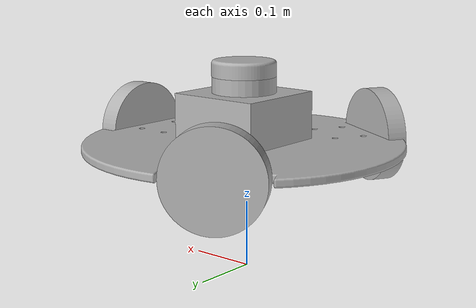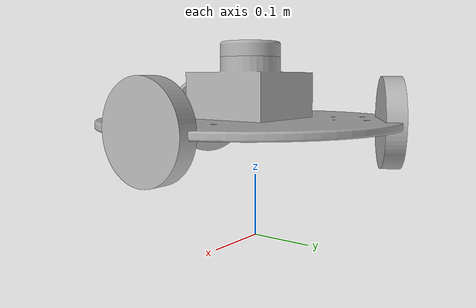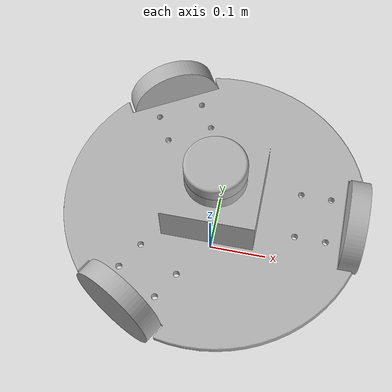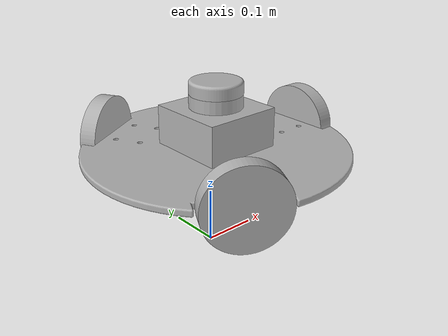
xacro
<?xml version="1.0" ?>
<robot name="adhic4" xmlns:xacro="http://www.ros.org/wiki/xacro">

<xacro:include filename="$(find adhic4_description)/urdf/materials.xacro" />
<xacro:include filename="$(find adhic4_description)/urdf/adhic4.trans" />
<xacro:include filename="$(find adhic4_description)/urdf/adhic4.gazebo" />
<link name="base_footprint"></link>
<link name="hbot_base">
  <inertial>
    <origin xyz="0.018156704502869988 -0.0074033581631362325 0.18794645946750038" rpy="0 0 0"/>
    <mass value="208.37705429986153"/>
    <inertia ixx="7.371857" iyy="7.368891" izz="13.35531" ixy="-0.00061" iyz="-4.5e-05" ixz="-0.000131"/>
  </inertial>
  <visual>
    <origin xyz="0 0 0.22" rpy="0 0 0"/>
    <geometry>
      <mesh filename="package://adhic4_description/meshes/base_link.stl" scale="0.0005 0.0005 0.0005"/>
    </geometry>
    <material name="silver"/>
  </visual>
  <collision>
    <origin xyz="0 0 0.22" rpy="0 0 0"/>
    <geometry>
      <mesh filename="package://adhic4_description/meshes/base_link.stl" scale="0.0005 0.0005 0.0005"/>
    </geometry>
  </collision>
</link>
<joint name="j1" type="fixed">
  <parent link="base_footprint"/>
  <child link="hbot_base"/>
</joint>
<link name="front_wheel_1">
  <inertial>
    <origin xyz="0.030000153152309306 4.022506844893539e-06 -3.814697197013217e-09" rpy="0 0 0"/>
    <mass value="30.68285473973862"/>
    <inertia ixx="0.31812" iyy="0.168265" izz="0.168265" ixy="2e-05" iyz="0.0" ixz="0.0"/>
  </inertial>
  <visual>
    <origin xyz="-0.426061 0.007854 0.075" rpy="0 0 0"/>
    <geometry>
      <mesh filename="package://adhic4_description/meshes/front_wheel_1.stl" scale="0.0005 0.0005 0.0005"/>
    </geometry>
    <material name="silver"/>
  </visual>
  <collision>
    <origin xyz="-0.426061 0.007854 0.075" rpy="0 0 0"/>
    <geometry>
      <mesh filename="package://adhic4_description/meshes/front_wheel_1.stl" scale="0.0005 0.0005 0.0005"/>
    </geometry>
  </collision>
</link>

<link name="left_wheel_1">
  <inertial>
    <origin xyz="-0.0149998607647496 0.025980765634774194 -3.814698668058725e-09" rpy="0 0 0"/>
    <mass value="30.68285473973862"/>
    <inertia ixx="0.205729" iyy="0.280656" izz="0.168265" ixy="-0.064889" iyz="0.0" ixz="-0.0"/>
  </inertial>
  <visual>
    <origin xyz="0.185829 -0.345941 0.075" rpy="0 0 0"/>
    <geometry>
      <mesh filename="package://adhic4_description/meshes/left_wheel_1.stl" scale="0.0005 0.0005 0.0005"/>
    </geometry>
    <material name="silver"/>
  </visual>
  <collision>
    <origin xyz="0.185829 -0.345941 0.075" rpy="0 0 0"/>
    <geometry>
      <mesh filename="package://adhic4_description/meshes/left_wheel_1.stl" scale="0.0005 0.0005 0.0005"/>
    </geometry>
  </collision>
</link>

<link name="right_wheel_1">
  <inertial>
    <origin xyz="-0.014994788089180644 -0.025983621299543846 -3.814697280279944e-09" rpy="0 0 0"/>
    <mass value="30.682854739738648"/>
    <inertia ixx="0.205703" iyy="0.280682" izz="0.168265" ixy="0.064874" iyz="0.0" ixz="0.0"/>
  </inertial>
  <visual>
    <origin xyz="0.186434 0.360531 0.075" rpy="0 0 0"/>
    <geometry>
      <mesh filename="package://adhic4_description/meshes/right_wheel_1.stl" scale="0.0005 0.0005 0.0005"/>
    </geometry>
    <material name="silver"/>
  </visual>
  <collision>
    <origin xyz="0.186434 0.360531 0.075" rpy="0 0 0"/>
    <geometry>
      <mesh filename="package://adhic4_description/meshes/right_wheel_1.stl" scale="0.0005 0.0005 0.0005"/>
    </geometry>
  </collision>
</link>

<link name="lidar_1_1">
  <inertial>
    <origin xyz="1.5554700822859036e-07 -3.886178115870831e-07 0.02380807279672631" rpy="0 0 0"/>
    <mass value="10.797829000846852"/>
    <inertia ixx="0.026687" iyy="0.026687" izz="0.049282" ixy="0.0" iyz="0.0" ixz="-0.0"/>
  </inertial>
  <visual>
    <origin xyz="-0.018171 0.007397 -0.129" rpy="0 0 0"/>
    <geometry>
      <mesh filename="package://adhic4_description/meshes/lidar_1_1.stl" scale="0.0005 0.0005 0.0005"/>
    </geometry>
    <material name="silver"/>
  </visual>
  <collision>
    <origin xyz="-0.018171 0.007397 -0.129" rpy="0 0 0"/>
    <geometry>
      <mesh filename="package://adhic4_description/meshes/lidar_1_1.stl" scale="0.0005 0.0005 0.0005"/>
    </geometry>
  </collision>
</link>

<joint name="Revolute1" type="continuous">
  <origin xyz="0.426061 -0.007854 0.145" rpy="0 0 0"/>
  <parent link="hbot_base"/>
  <child link="front_wheel_1"/>
  <axis xyz="1.0 0.000132 0.0"/>
</joint>

<joint name="Revolute2" type="continuous">
  <origin xyz="-0.185829 0.345941 0.145" rpy="0 0 0"/>
  <parent link="hbot_base"/>
  <child link="left_wheel_1"/>
  <axis xyz="-0.5 0.866025 0.0"/>
</joint>

<joint name="Revolute3" type="continuous">
  <origin xyz="-0.186434 -0.360531 0.145" rpy="0 0 0"/>
  <parent link="hbot_base"/>
  <child link="right_wheel_1"/>
  <axis xyz="-0.499827 -0.866126 0.0"/>
</joint>

<joint name="Rigid 4" type="fixed">
  <origin xyz="0.018171 -0.007397 0.349" rpy="0 0 0"/>
  <parent link="hbot_base"/>
  <child link="lidar_1_1"/>
</joint>

</robot>

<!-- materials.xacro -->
<robot name="adhic4" xmlns:xacro="http://www.ros.org/wiki/xacro" >

<material name="silver">
  <color rgba="0.700 0.700 0.700 1.000"/>
</material>

</robot>

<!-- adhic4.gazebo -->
<robot name="adhic4" xmlns:xacro="http://www.ros.org/wiki/xacro" >

<xacro:property name="body_color" value="Gazebo/Silver" />

<gazebo>
  <plugin name="control" filename="libgazebo_ros_control.so"/>
</gazebo>
<gazebo reference="base_link">
  <material>${body_color}</material>
  <mu1>0.2</mu1>
  <mu2>0.2</mu2>
  <selfCollide>true</selfCollide>
  <gravity>true</gravity>
</gazebo>

<gazebo reference="front_wheel_1">
  <material>${body_color}</material>
  <mu1>0.2</mu1>
  <mu2>0.2</mu2>
  <selfCollide>true</selfCollide>
</gazebo>

<gazebo reference="left_wheel_1">
  <material>${body_color}</material>
  <mu1>0.2</mu1>
  <mu2>0.2</mu2>
  <selfCollide>true</selfCollide>
</gazebo>

<gazebo reference="right_wheel_1">
  <material>${body_color}</material>
  <mu1>0.2</mu1>
  <mu2>0.2</mu2>
  <selfCollide>true</selfCollide>
</gazebo>

<gazebo reference="lidar_1_1">
  <material>${body_color}</material>
  <mu1>0.2</mu1>
  <mu2>0.2</mu2>
  <selfCollide>true</selfCollide>
</gazebo>

<gazebo>
  <plugin name="object_controller" filename="libgazebo_ros_planar_move.so">
    <commandTopic>cmd_vel</commandTopic>
    <odometryTopic>odom</odometryTopic>
    <odometryFrame>odom</odometryFrame>
    <odometryRate>30.0</odometryRate>
    <robotBaseFrame>chbot_base</robotBaseFrame>
  </plugin>
</gazebo>

<gazebo>
  <plugin name="right_force" filename="libcustom_force.so" >
    <bodyName>right_wheel_1</bodyName>
    <topicName>right_wheel_force</topicName>
  </plugin>
</gazebo>

<gazebo>
  <plugin name="left_force" filename="libcustom_force.so" >
    <bodyName>left_wheel_1</bodyName>
    <topicName>left_wheel_force</topicName>
  </plugin>
</gazebo>

<gazebo>
  <plugin name="front_force" filename="libcustom_force.so" >
    <bodyName>front_wheel_1</bodyName>
    <topicName>front_wheel_force</topicName>
  </plugin>
 </gazebo>

  <!-- hokuyo -->
<gazebo reference="lidar_1_1">
  <sensor type="ray" name="head_hokuyo_sensor">
    <pose>0 0 0 0 0 0</pose>
    <visualize>true</visualize>
    <update_rate>40</update_rate>
    <ray>
      <scan>
        <horizontal>
          <samples>720</samples>
          <resolution>1</resolution>
          <min_angle>-1.570796</min_angle>
          <max_angle>1.570796</max_angle>
        </horizontal>
      </scan>
      <range>
        <min>0.10</min>
        <max>2</max>
        <resolution>0.01</resolution>
      </range>
      <noise>
        <type>gaussian</type>
        <mean>0.0</mean>
        <stddev>0.01</stddev>
      </noise>
    </ray>
    <plugin name="gazebo_ros_head_hokuyo_controller" filename="libgazebo_ros_laser.so">
      <topicName>/bot/scan</topicName>
      <frameName>lidar_1_1</frameName>
    </plugin>
  </sensor>
</gazebo>

<gazebo reference="camera_link2">
  <sensor type="ray" name="head_hokuyo_sensor">
    <pose>0 -2 0 0 0 0</pose>
    <visualize>true</visualize>
    <update_rate>40</update_rate>
    <ray>
      <scan>
        <horizontal>
          <samples>720</samples>
          <resolution>1</resolution>
          <min_angle>-0.570796</min_angle>
          <max_angle>0.570796</max_angle>
        </horizontal>
      </scan>
      <range>
        <min>0.10</min>
        <max>2</max>
        <resolution>0.01</resolution>
      </range>
      <noise>
        <type>gaussian</type>
        <mean>0.0</mean>
        <stddev>0.01</stddev>
      </noise>
    </ray>
    <plugin name="gazebo_ros_head_hokuyo_controller" filename="libgazebo_ros_laser.so">
      <topicName>/bot/infectionscan</topicName>
      <frameName>camera_link2</frameName>
    </plugin>
  </sensor>
</gazebo>

</robot>
